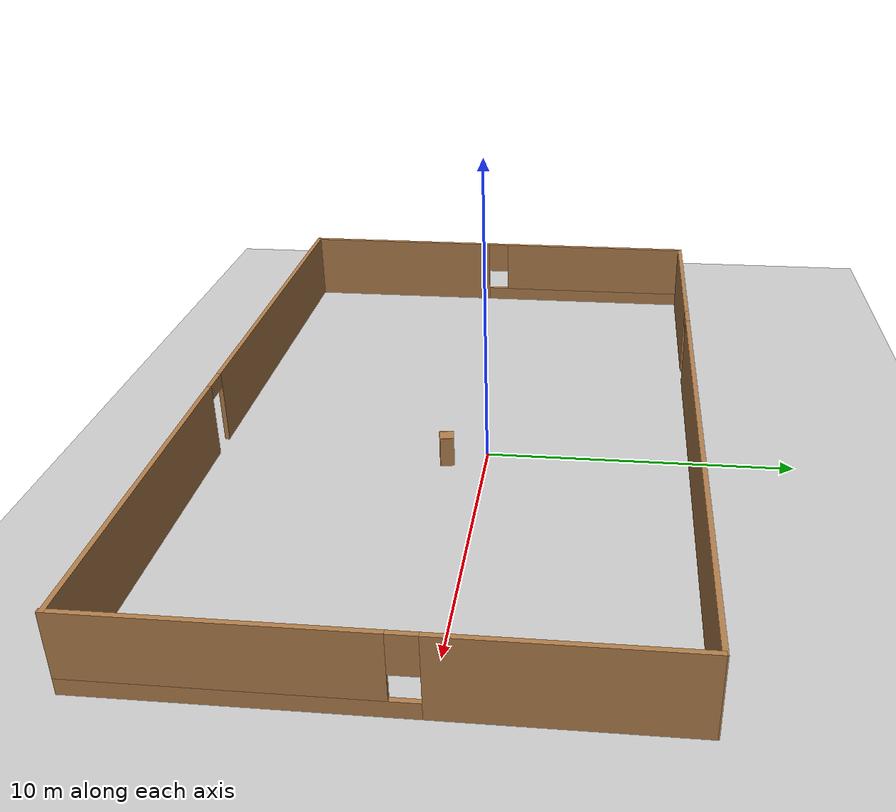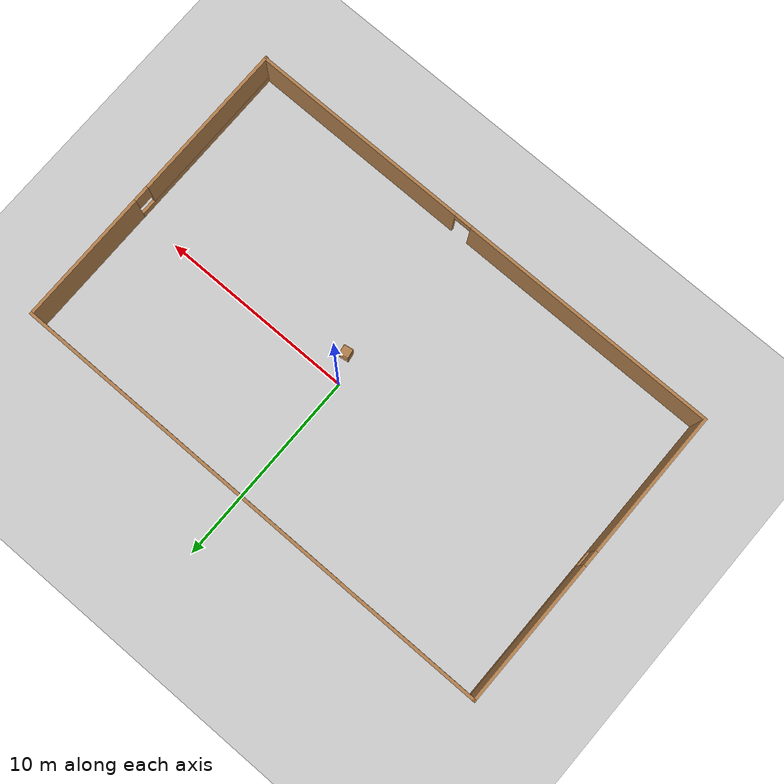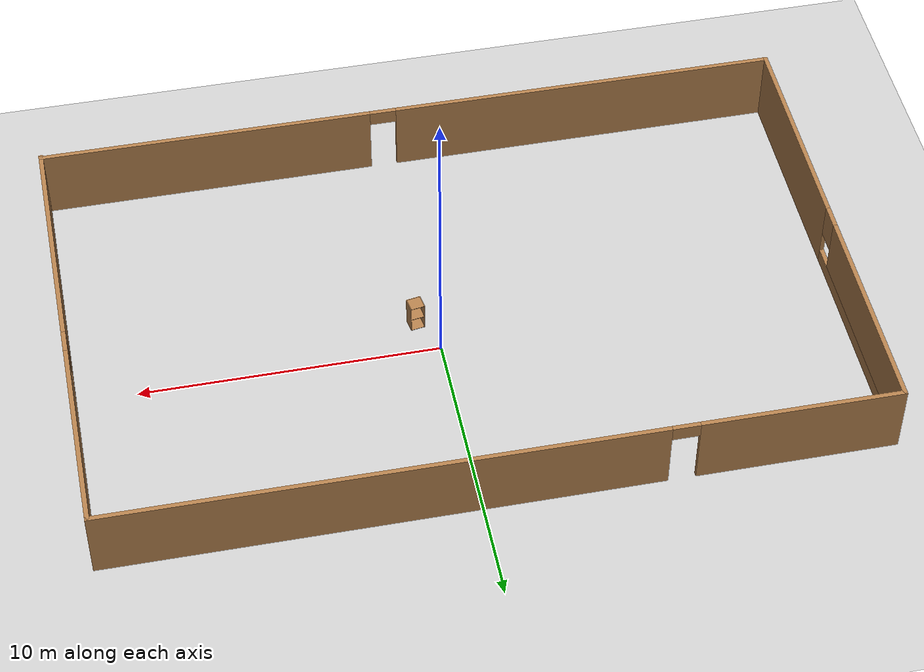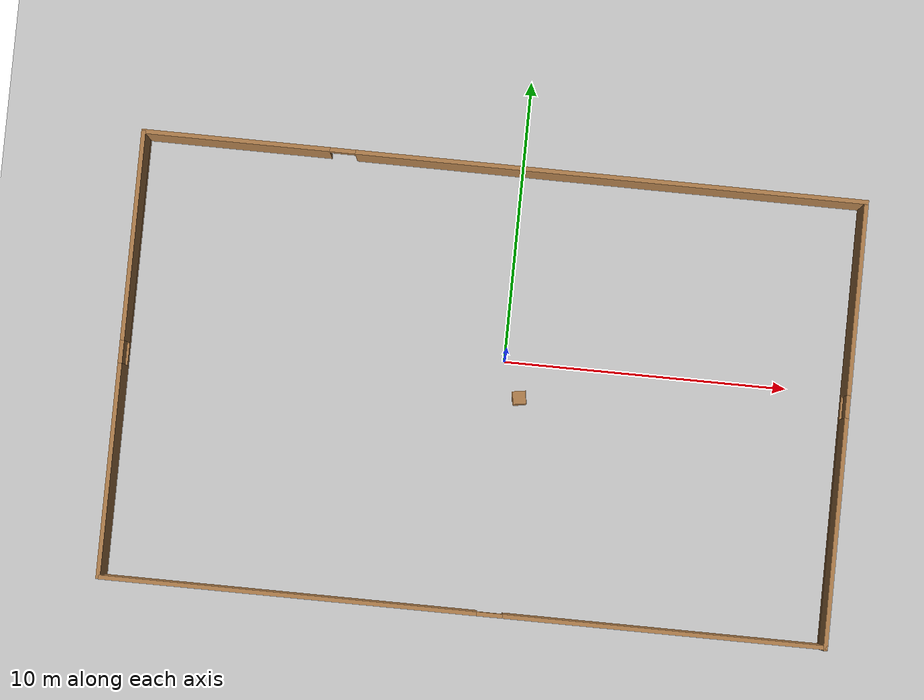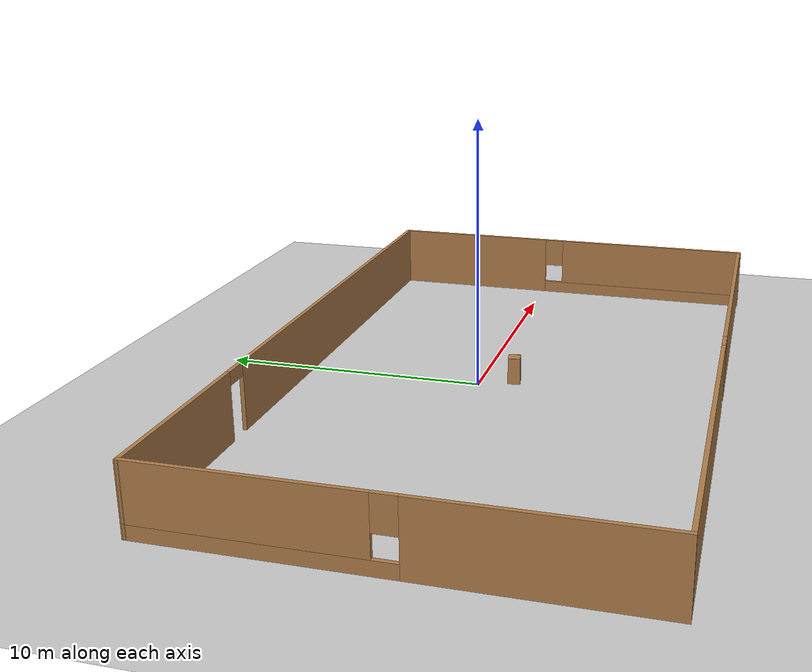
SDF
<sdf version="1.7">
 <world name="default">
  <light name="sun" type="directional">
   <pose>0 0 10 0 -0 0</pose>
   <diffuse>0.8 0.8 0.8 1</diffuse>
   <specular>0.2 0.2 0.2 1</specular>
   <attenuation>
    <range>1000</range>
    <constant>0.9</constant>
    <linear>0.01</linear>
    <quadratic>0.001</quadratic>
   </attenuation>
   <direction>-0.5 0.1 -0.9</direction>
   <spot><inner_angle>0</inner_angle><outer_angle>0</outer_angle><falloff>0</falloff></spot>
  </light>
  <model name="ground_plane">
   <static>1</static>
   <link name="link">
    <collision name="collision">
     <geometry><plane><normal>0 0 1</normal><size>100 100</size></plane></geometry>
     <surface><friction><ode><mu>100</mu><mu2>50</mu2></ode></friction></surface>
    </collision>
    <visual name="visual">
     <cast_shadows>0</cast_shadows>
     <geometry><plane><normal>0 0 1</normal><size>100 100</size></plane></geometry>
     <material>
      <script><uri>file://media/materials/scripts/gazebo.material</uri><name>Gazebo/Grey</name></script>
     </material>
    </visual>
   </link>
  </model>
  <gravity>0 0 -9.8</gravity>
  <magnetic_field>6e-06 2.3e-05 -4.2e-05</magnetic_field>
  <atmosphere type="adiabatic"/>
  <physics type="ode">
   <max_step_size>0.001</max_step_size>
   <real_time_factor>1</real_time_factor>
   <real_time_update_rate>1000</real_time_update_rate>
  </physics>
  <scene><ambient>0.4 0.4 0.4 1</ambient><background>0.7 0.7 0.7 1</background><shadows>1</shadows></scene>
  <audio><device>default</device></audio>
  <spherical_coordinates>
   <surface_model>EARTH_WGS84</surface_model>
   <latitude_deg>0</latitude_deg>
   <longitude_deg>0</longitude_deg>
   <elevation>0</elevation>
   <heading_deg>0</heading_deg>
  </spherical_coordinates>
  <model name="cabinet">
   <static>1</static>
   <link name="cabinet_bottom_plate">
    <inertial>
     <pose>0 0 -1 0 -0 0</pose>
     <inertia><ixx>2.05</ixx><ixy>0</ixy><ixz>0</ixz><iyy>2.05</iyy><iyz>0</iyz><izz>2.05</izz></inertia>
     <mass>25</mass>
    </inertial>
    <collision name="cabinet_bottom_plate_geom">
     <pose>0 0 0.01 0 -0 0</pose>
     <geometry><box><size>0.45 0.45 0.02</size></box></geometry>
    </collision>
    <visual name="cabinet_bottom_plate_geom_visual">
     <pose>0 0 0.01 0 -0 0</pose>
     <geometry><box><size>0.45 0.45 0.02</size></box></geometry>
     <material>
      <script><uri>file://media/materials/scripts/gazebo.material</uri><name>Gazebo/Wood</name></script>
     </material>
    </visual>
    <collision name="cabinet_bottom_plate_geom_cabinet_back_plate">
     <pose>0.235 0 0.51 0 -0 0</pose>
     <geometry><box><size>0.02 0.45 1.02</size></box></geometry>
    </collision>
    <visual name="cabinet_bottom_plate_geom_cabinet_back_plate_visual">
     <pose>0.235 0 0.51 0 -0 0</pose>
     <geometry><box><size>0.02 0.45 1.02</size></box></geometry>
     <material>
      <script><uri>file://media/materials/scripts/gazebo.material</uri><name>Gazebo/Wood</name></script>
     </material>
    </visual>
    <collision name="cabinet_bottom_plate_geom_cabinet_left_plate">
     <pose>0 0.235 0.51 0 -0 0</pose>
     <geometry><box><size>0.45 0.02 1.02</size></box></geometry>
    </collision>
    <visual name="cabinet_bottom_plate_geom_cabinet_left_plate_visual">
     <pose>0 0.235 0.51 0 -0 0</pose>
     <geometry><box><size>0.45 0.02 1.02</size></box></geometry>
     <material>
      <script><uri>file://media/materials/scripts/gazebo.material</uri><name>Gazebo/Wood</name></script>
     </material>
    </visual>
    <collision name="cabinet_bottom_plate_geom_cabinet_middle_plate">
     <pose>0 0 0.51 0 -0 0</pose>
     <geometry><box><size>0.45 0.45 0.02</size></box></geometry>
    </collision>
    <visual name="cabinet_bottom_plate_geom_cabinet_middle_plate_visual">
     <pose>0 0 0.51 0 -0 0</pose>
     <geometry><box><size>0.45 0.45 0.02</size></box></geometry>
     <material>
      <script><uri>file://media/materials/scripts/gazebo.material</uri><name>Gazebo/Wood</name></script>
     </material>
    </visual>
    <collision name="cabinet_bottom_plate_geom_cabinet_right_plate">
     <pose>0 -0.235 0.51 0 -0 0</pose>
     <geometry><box><size>0.45 0.02 1.02</size></box></geometry>
    </collision>
    <visual name="cabinet_bottom_plate_geom_cabinet_right_plate_visual">
     <pose>0 -0.235 0.51 0 -0 0</pose>
     <geometry><box><size>0.45 0.02 1.02</size></box></geometry>
     <material>
      <script><uri>file://media/materials/scripts/gazebo.material</uri><name>Gazebo/Wood</name></script>
     </material>
    </visual>
    <collision name="cabinet_bottom_plate_geom_cabinet_top_plate">
     <pose>0 0 1.01 0 -0 0</pose>
     <geometry><box><size>0.45 0.45 0.02</size></box></geometry>
    </collision>
    <visual name="cabinet_bottom_plate_geom_cabinet_top_plate_visual">
     <pose>0 0 1.01 0 -0 0</pose>
     <geometry><box><size>0.45 0.45 0.02</size></box></geometry>
     <material>
      <script><uri>file://media/materials/scripts/gazebo.material</uri><name>Gazebo/Wood</name></script>
     </material>
    </visual>
   </link>
   <pose>0.618652 -1.24056 0 0 0 -1.4105</pose>
  </model>
  <model name="test">
   <pose>-0.6622 -1.1248 0 0 -0 0</pose>
   <link name="Wall_3">
    <pose>-12.7047 -5.9e-05 0 0 -0 1.5708</pose>
    <visual name="Wall_3_Visual_0">
     <pose>-4.09308 0 1.25 0 -0 0</pose>
     <geometry><box><size>7.56384 0.15 2.5</size></box></geometry>
     <material>
      <script><uri>file://media/materials/scripts/gazebo.material</uri><name>Gazebo/Wood</name></script>
      <ambient>1 1 1 1</ambient>
     </material>
     <meta><layer>0</layer></meta>
    </visual>
    <collision name="Wall_3_Collision_0">
     <geometry><box><size>7.56384 0.15 2.5</size></box></geometry>
     <pose>-4.09308 0 1.25 0 -0 0</pose>
    </collision>
    <visual name="Wall_3_Visual_1">
     <pose>3.78192 0 0.25 0 -0 0</pose>
     <geometry><box><size>8.18616 0.15 0.5</size></box></geometry>
     <material>
      <script><uri>file://media/materials/scripts/gazebo.material</uri><name>Gazebo/Wood</name></script>
      <ambient>1 1 1 1</ambient>
     </material>
     <meta><layer>0</layer></meta>
    </visual>
    <collision name="Wall_3_Collision_1">
     <geometry><box><size>8.18616 0.15 0.5</size></box></geometry>
     <pose>3.78192 0 0.25 0 -0 0</pose>
    </collision>
    <visual name="Wall_3_Visual_2">
     <pose>4.18192 0 1.5 0 -0 0</pose>
     <geometry><box><size>7.38616 0.15 2</size></box></geometry>
     <material>
      <script><uri>file://media/materials/scripts/gazebo.material</uri><name>Gazebo/Wood</name></script>
      <ambient>1 1 1 1</ambient>
     </material>
     <meta><layer>0</layer></meta>
    </visual>
    <collision name="Wall_3_Collision_2">
     <geometry><box><size>7.38616 0.15 2</size></box></geometry>
     <pose>4.18192 0 1.5 0 -0 0</pose>
    </collision>
    <visual name="Wall_3_Visual_3">
     <pose>0.088838 0 1.9 0 -0 0</pose>
     <geometry><box><size>0.8 0.15 1.2</size></box></geometry>
     <material>
      <script><uri>file://media/materials/scripts/gazebo.material</uri><name>Gazebo/Wood</name></script>
      <ambient>1 1 1 1</ambient>
     </material>
     <meta><layer>0</layer></meta>
    </visual>
    <collision name="Wall_3_Collision_3">
     <geometry><box><size>0.8 0.15 1.2</size></box></geometry>
     <pose>0.088838 0 1.9 0 -0 0</pose>
    </collision>
   </link>
   <link name="Wall_4">
    <pose>0 7.82017 0 0 -0 -0.001592</pose>
    <visual name="Wall_4_Visual_0">
     <pose>-9.46772 0 1.25 0 -0 0</pose>
     <geometry><box><size>6.62391 0.15 2.5</size></box></geometry>
     <material>
      <script><uri>file://media/materials/scripts/gazebo.material</uri><name>Gazebo/Wood</name></script>
      <ambient>1 1 1 1</ambient>
     </material>
     <meta><layer>0</layer></meta>
    </visual>
    <collision name="Wall_4_Collision_0">
     <geometry><box><size>6.62391 0.15 2.5</size></box></geometry>
     <pose>-9.46772 0 1.25 0 -0 0</pose>
    </collision>
    <visual name="Wall_4_Visual_1">
     <pose>3.76195 0 1.25 0 -0 0</pose>
     <geometry><box><size>18.0354 0.15 2.5</size></box></geometry>
     <material>
      <script><uri>file://media/materials/scripts/gazebo.material</uri><name>Gazebo/Wood</name></script>
      <ambient>1 1 1 1</ambient>
     </material>
     <meta><layer>0</layer></meta>
    </visual>
    <collision name="Wall_4_Collision_1">
     <geometry><box><size>18.0354 0.15 2.5</size></box></geometry>
     <pose>3.76195 0 1.25 0 -0 0</pose>
    </collision>
    <visual name="Wall_4_Visual_2">
     <pose>-5.70577 0 2.25 0 -0 0</pose>
     <geometry><box><size>0.9 0.15 0.5</size></box></geometry>
     <material>
      <script><uri>file://media/materials/scripts/gazebo.material</uri><name>Gazebo/Wood</name></script>
      <ambient>1 1 1 1</ambient>
     </material>
     <meta><layer>0</layer></meta>
    </visual>
    <collision name="Wall_4_Collision_2">
     <geometry><box><size>0.9 0.15 0.5</size></box></geometry>
     <pose>-5.70577 0 2.25 0 -0 0</pose>
    </collision>
   </link>
   <link name="Wall_5">
    <pose>12.7047 -0.040515 0 0 -0 -1.5708</pose>
    <visual name="Wall_5_Visual_0">
     <pose>-4.46511 0 1.25 0 -0 0</pose>
     <geometry><box><size>6.81978 0.15 2.5</size></box></geometry>
     <material>
      <script><uri>file://media/materials/scripts/gazebo.material</uri><name>Gazebo/Wood</name></script>
      <ambient>1 1 1 1</ambient>
     </material>
     <meta><layer>0</layer></meta>
    </visual>
    <collision name="Wall_5_Collision_0">
     <geometry><box><size>6.81978 0.15 2.5</size></box></geometry>
     <pose>-4.46511 0 1.25 0 -0 0</pose>
    </collision>
    <visual name="Wall_5_Visual_1">
     <pose>3.40989 0 0.25 0 -0 0</pose>
     <geometry><box><size>8.93022 0.15 0.5</size></box></geometry>
     <material>
      <script><uri>file://media/materials/scripts/gazebo.material</uri><name>Gazebo/Wood</name></script>
      <ambient>1 1 1 1</ambient>
     </material>
     <meta><layer>0</layer></meta>
    </visual>
    <collision name="Wall_5_Collision_1">
     <geometry><box><size>8.93022 0.15 0.5</size></box></geometry>
     <pose>3.40989 0 0.25 0 -0 0</pose>
    </collision>
    <visual name="Wall_5_Visual_2">
     <pose>3.80989 0 1.5 0 -0 0</pose>
     <geometry><box><size>8.13022 0.15 2</size></box></geometry>
     <material>
      <script><uri>file://media/materials/scripts/gazebo.material</uri><name>Gazebo/Wood</name></script>
      <ambient>1 1 1 1</ambient>
     </material>
     <meta><layer>0</layer></meta>
    </visual>
    <collision name="Wall_5_Collision_2">
     <geometry><box><size>8.13022 0.15 2</size></box></geometry>
     <pose>3.80989 0 1.5 0 -0 0</pose>
    </collision>
    <visual name="Wall_5_Visual_3">
     <pose>-0.655216 0 1.9 0 -0 0</pose>
     <geometry><box><size>0.8 0.15 1.2</size></box></geometry>
     <material>
      <script><uri>file://media/materials/scripts/gazebo.material</uri><name>Gazebo/Wood</name></script>
      <ambient>1 1 1 1</ambient>
     </material>
     <meta><layer>0</layer></meta>
    </visual>
    <collision name="Wall_5_Collision_3">
     <geometry><box><size>0.8 0.15 1.2</size></box></geometry>
     <pose>-0.655216 0 1.9 0 -0 0</pose>
    </collision>
   </link>
   <link name="Wall_6">
    <pose>0.040456 -7.80006 0 0 -0 3.14159</pose>
    <visual name="Wall_6_Visual_0">
     <pose>-7.05904 0 1.25 0 -0 0</pose>
     <geometry><box><size>11.3603 0.15 2.5</size></box></geometry>
     <material>
      <script><uri>file://media/materials/scripts/gazebo.material</uri><name>Gazebo/Wood</name></script>
      <ambient>1 1 1 1</ambient>
     </material>
     <meta><layer>0</layer></meta>
    </visual>
    <collision name="Wall_6_Collision_0">
     <geometry><box><size>11.3603 0.15 2.5</size></box></geometry>
     <pose>-7.05904 0 1.25 0 -0 0</pose>
    </collision>
    <visual name="Wall_6_Visual_1">
     <pose>6.13017 0 1.25 0 -0 0</pose>
     <geometry><box><size>13.2181 0.15 2.5</size></box></geometry>
     <material>
      <script><uri>file://media/materials/scripts/gazebo.material</uri><name>Gazebo/Wood</name></script>
      <ambient>1 1 1 1</ambient>
     </material>
     <meta><layer>0</layer></meta>
    </visual>
    <collision name="Wall_6_Collision_1">
     <geometry><box><size>13.2181 0.15 2.5</size></box></geometry>
     <pose>6.13017 0 1.25 0 -0 0</pose>
    </collision>
    <visual name="Wall_6_Visual_2">
     <pose>-0.928871 0 2.25 0 -0 0</pose>
     <geometry><box><size>0.9 0.15 0.5</size></box></geometry>
     <material>
      <script><uri>file://media/materials/scripts/gazebo.material</uri><name>Gazebo/Wood</name></script>
      <ambient>1 1 1 1</ambient>
     </material>
     <meta><layer>0</layer></meta>
    </visual>
    <collision name="Wall_6_Collision_2">
     <geometry><box><size>0.9 0.15 0.5</size></box></geometry>
     <pose>-0.928871 0 2.25 0 -0 0</pose>
    </collision>
   </link>
   <static>1</static>
  </model>
 </world>
</sdf>
